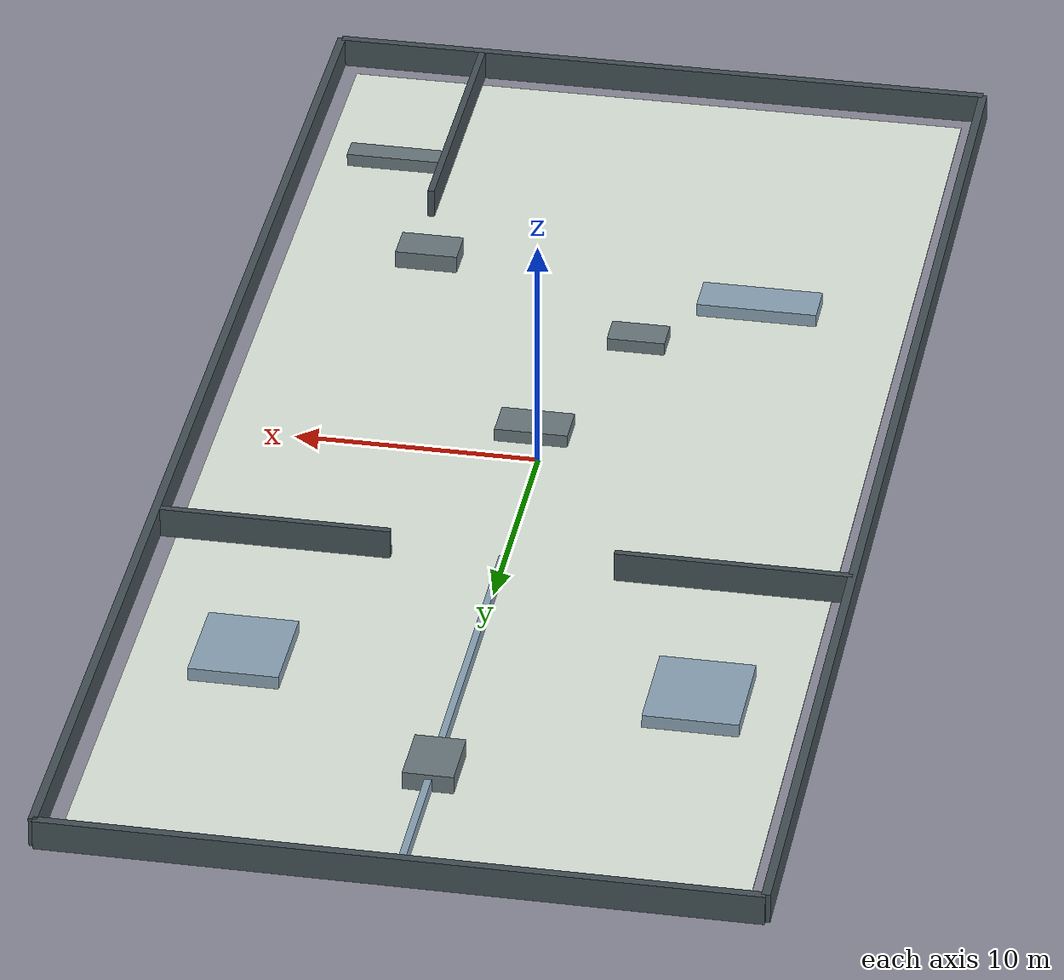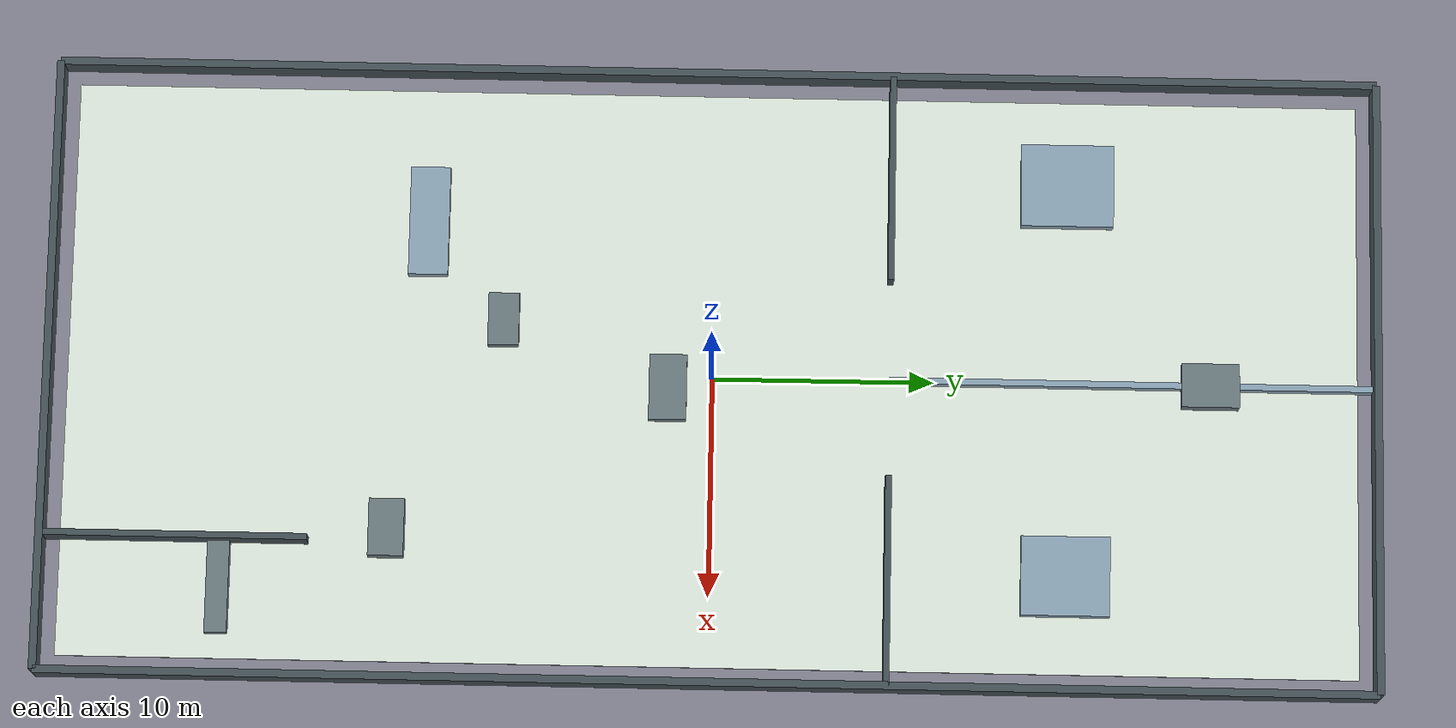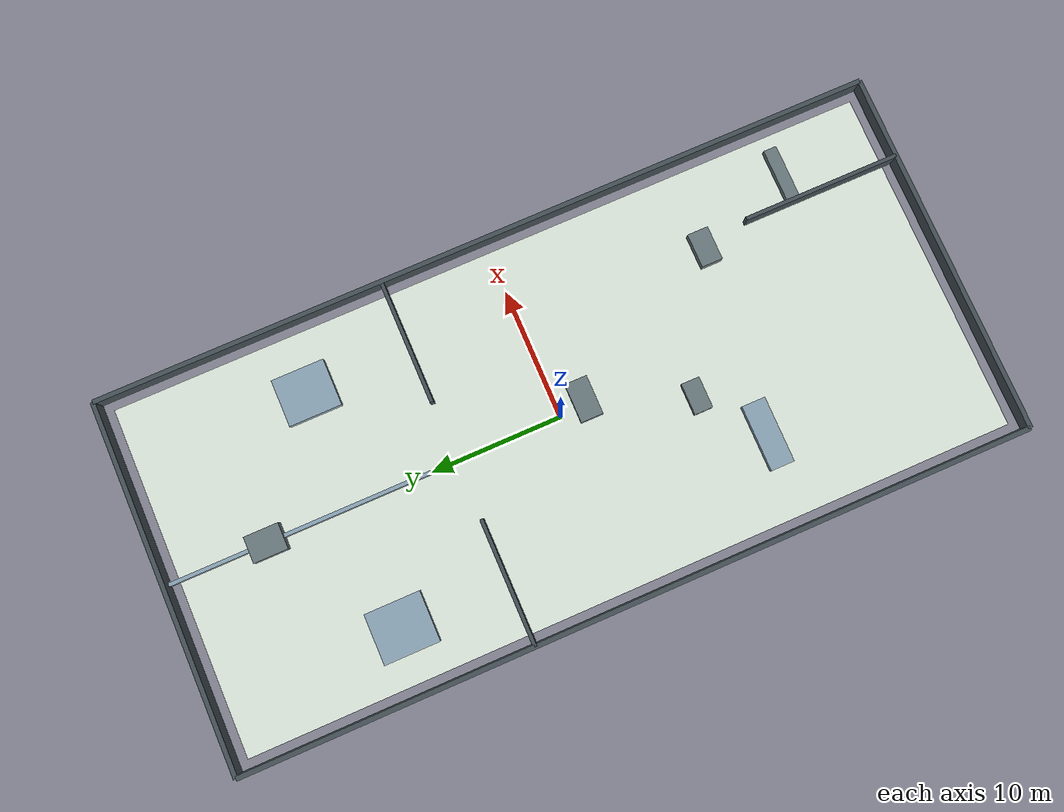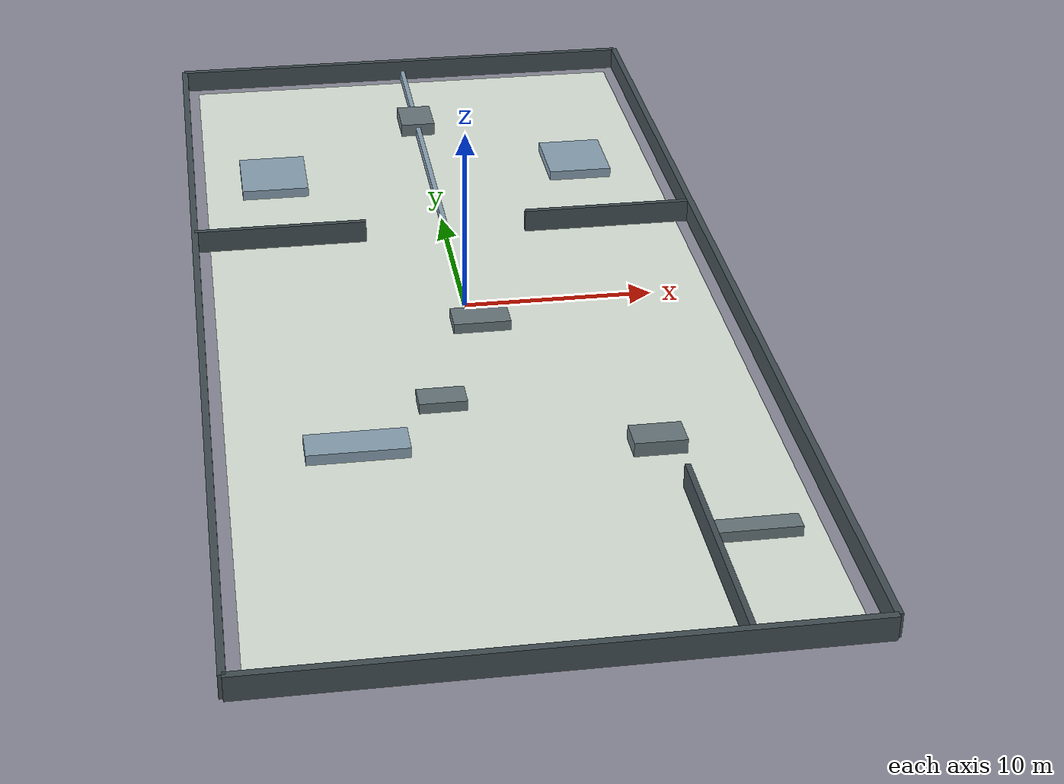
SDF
<?xml version="1.0" ?>
<sdf version="1.6">
  <world name="open_plan_house">
    <gravity>0 0 -9.8</gravity>
    <scene>
      <ambient>0.65 0.65 0.65 1</ambient>
      <background>0.78 0.84 0.88 1</background>
    </scene>
    <include>
      <uri>model://sun</uri>
    </include>
    <model name="open_plan_house_floor">
      <static>true</static>
      <pose>0.000 0.000 -0.025 0 0 0</pose>
      <link name="floor_link">
        <collision name="floor_collision">
          <geometry>
            <box><size>26.400 58.400 0.050</size></box>
          </geometry>
        </collision>
        <visual name="floor_visual">
          <geometry>
            <box><size>26.400 58.400 0.050</size></box>
          </geometry>
          <material><ambient>0.88 0.92 0.88 1</ambient><diffuse>0.88 0.92 0.88 1</diffuse></material>
        </visual>
      </link>
    </model>
    <model name="outer_north">
      <static>true</static>
      <pose>0.000 30.000 0.625 0 0 0</pose>
      <link name="outer_north_link">
        <collision name="outer_north_collision">
          <geometry>
            <box><size>28.000 0.350 1.250</size></box>
          </geometry>
        </collision>
        <visual name="outer_north_visual">
          <geometry>
            <box><size>28.000 0.350 1.250</size></box>
          </geometry>
          <material><ambient>0.27 0.32 0.34 1</ambient><diffuse>0.27 0.32 0.34 1</diffuse></material>
        </visual>
      </link>
    </model>
    <model name="outer_south">
      <static>true</static>
      <pose>0.000 -30.000 0.625 0 0 0</pose>
      <link name="outer_south_link">
        <collision name="outer_south_collision">
          <geometry>
            <box><size>28.000 0.350 1.250</size></box>
          </geometry>
        </collision>
        <visual name="outer_south_visual">
          <geometry>
            <box><size>28.000 0.350 1.250</size></box>
          </geometry>
          <material><ambient>0.27 0.32 0.34 1</ambient><diffuse>0.27 0.32 0.34 1</diffuse></material>
        </visual>
      </link>
    </model>
    <model name="outer_west">
      <static>true</static>
      <pose>-14.000 0.000 0.625 0 0 0</pose>
      <link name="outer_west_link">
        <collision name="outer_west_collision">
          <geometry>
            <box><size>0.350 60.000 1.250</size></box>
          </geometry>
        </collision>
        <visual name="outer_west_visual">
          <geometry>
            <box><size>0.350 60.000 1.250</size></box>
          </geometry>
          <material><ambient>0.27 0.32 0.34 1</ambient><diffuse>0.27 0.32 0.34 1</diffuse></material>
        </visual>
      </link>
    </model>
    <model name="outer_east">
      <static>true</static>
      <pose>14.000 0.000 0.625 0 0 0</pose>
      <link name="outer_east_link">
        <collision name="outer_east_collision">
          <geometry>
            <box><size>0.350 60.000 1.250</size></box>
          </geometry>
        </collision>
        <visual name="outer_east_visual">
          <geometry>
            <box><size>0.350 60.000 1.250</size></box>
          </geometry>
          <material><ambient>0.27 0.32 0.34 1</ambient><diffuse>0.27 0.32 0.34 1</diffuse></material>
        </visual>
      </link>
    </model>
    <model name="open_private_wall_w">
      <static>true</static>
      <pose>-9.250 8.000 0.625 0 0 0</pose>
      <link name="open_private_wall_w_link">
        <collision name="open_private_wall_w_collision">
          <geometry>
            <box><size>9.500 0.280 1.250</size></box>
          </geometry>
        </collision>
        <visual name="open_private_wall_w_visual">
          <geometry>
            <box><size>9.500 0.280 1.250</size></box>
          </geometry>
          <material><ambient>0.27 0.32 0.34 1</ambient><diffuse>0.27 0.32 0.34 1</diffuse></material>
        </visual>
      </link>
    </model>
    <model name="open_private_wall_e">
      <static>true</static>
      <pose>9.250 8.000 0.625 0 0 0</pose>
      <link name="open_private_wall_e_link">
        <collision name="open_private_wall_e_collision">
          <geometry>
            <box><size>9.500 0.280 1.250</size></box>
          </geometry>
        </collision>
        <visual name="open_private_wall_e_visual">
          <geometry>
            <box><size>9.500 0.280 1.250</size></box>
          </geometry>
          <material><ambient>0.27 0.32 0.34 1</ambient><diffuse>0.27 0.32 0.34 1</diffuse></material>
        </visual>
      </link>
    </model>
    <model name="open_bedroom_split">
      <static>true</static>
      <pose>0.000 19.000 0.275 0 0 0</pose>
      <link name="open_bedroom_split_link">
        <collision name="open_bedroom_split_collision">
          <geometry>
            <box><size>0.280 22.000 0.550</size></box>
          </geometry>
        </collision>
        <visual name="open_bedroom_split_visual">
          <geometry>
            <box><size>0.280 22.000 0.550</size></box>
          </geometry>
          <material><ambient>0.55 0.65 0.72 1</ambient><diffuse>0.55 0.65 0.72 1</diffuse></material>
        </visual>
      </link>
    </model>
    <model name="open_kitchen_hint_wall">
      <static>true</static>
      <pose>7.800 -24.000 0.625 0 0 0</pose>
      <link name="open_kitchen_hint_wall_link">
        <collision name="open_kitchen_hint_wall_collision">
          <geometry>
            <box><size>0.280 12.000 1.250</size></box>
          </geometry>
        </collision>
        <visual name="open_kitchen_hint_wall_visual">
          <geometry>
            <box><size>0.280 12.000 1.250</size></box>
          </geometry>
          <material><ambient>0.27 0.32 0.34 1</ambient><diffuse>0.27 0.32 0.34 1</diffuse></material>
        </visual>
      </link>
    </model>
    <model name="open_sofa">
      <static>true</static>
      <pose>-7.000 -13.000 0.275 0 0 0</pose>
      <link name="open_sofa_link">
        <collision name="open_sofa_collision">
          <geometry>
            <box><size>5.000 1.800 0.550</size></box>
          </geometry>
        </collision>
        <visual name="open_sofa_visual">
          <geometry>
            <box><size>5.000 1.800 0.550</size></box>
          </geometry>
          <material><ambient>0.55 0.65 0.72 1</ambient><diffuse>0.55 0.65 0.72 1</diffuse></material>
        </visual>
      </link>
    </model>
    <model name="open_coffee_table">
      <static>true</static>
      <pose>-2.500 -9.500 0.275 0 0 0</pose>
      <link name="open_coffee_table_link">
        <collision name="open_coffee_table_collision">
          <geometry>
            <box><size>2.400 1.400 0.550</size></box>
          </geometry>
        </collision>
        <visual name="open_coffee_table_visual">
          <geometry>
            <box><size>2.400 1.400 0.550</size></box>
          </geometry>
          <material><ambient>0.42 0.48 0.50 1</ambient><diffuse>0.42 0.48 0.50 1</diffuse></material>
        </visual>
      </link>
    </model>
    <model name="open_dining_table">
      <static>true</static>
      <pose>0.500 -2.000 0.275 0 0 0</pose>
      <link name="open_dining_table_link">
        <collision name="open_dining_table_collision">
          <geometry>
            <box><size>3.000 1.700 0.550</size></box>
          </geometry>
        </collision>
        <visual name="open_dining_table_visual">
          <geometry>
            <box><size>3.000 1.700 0.550</size></box>
          </geometry>
          <material><ambient>0.42 0.48 0.50 1</ambient><diffuse>0.42 0.48 0.50 1</diffuse></material>
        </visual>
      </link>
    </model>
    <model name="open_kitchen_counter">
      <static>true</static>
      <pose>10.000 -22.000 0.275 0 0 0</pose>
      <link name="open_kitchen_counter_link">
        <collision name="open_kitchen_counter_collision">
          <geometry>
            <box><size>4.200 1.000 0.550</size></box>
          </geometry>
        </collision>
        <visual name="open_kitchen_counter_visual">
          <geometry>
            <box><size>4.200 1.000 0.550</size></box>
          </geometry>
          <material><ambient>0.42 0.48 0.50 1</ambient><diffuse>0.42 0.48 0.50 1</diffuse></material>
        </visual>
      </link>
    </model>
    <model name="open_kitchen_island">
      <static>true</static>
      <pose>7.200 -14.500 0.375 0 0 0</pose>
      <link name="open_kitchen_island_link">
        <collision name="open_kitchen_island_collision">
          <geometry>
            <box><size>2.600 1.600 0.750</size></box>
          </geometry>
        </collision>
        <visual name="open_kitchen_island_visual">
          <geometry>
            <box><size>2.600 1.600 0.750</size></box>
          </geometry>
          <material><ambient>0.42 0.48 0.50 1</ambient><diffuse>0.42 0.48 0.50 1</diffuse></material>
        </visual>
      </link>
    </model>
    <model name="open_bed_left">
      <static>true</static>
      <pose>-9.200 16.000 0.275 0 0 0</pose>
      <link name="open_bed_left_link">
        <collision name="open_bed_left_collision">
          <geometry>
            <box><size>3.800 4.200 0.550</size></box>
          </geometry>
        </collision>
        <visual name="open_bed_left_visual">
          <geometry>
            <box><size>3.800 4.200 0.550</size></box>
          </geometry>
          <material><ambient>0.55 0.65 0.72 1</ambient><diffuse>0.55 0.65 0.72 1</diffuse></material>
        </visual>
      </link>
    </model>
    <model name="open_bed_right">
      <static>true</static>
      <pose>8.800 16.000 0.275 0 0 0</pose>
      <link name="open_bed_right_link">
        <collision name="open_bed_right_collision">
          <geometry>
            <box><size>3.600 4.000 0.550</size></box>
          </geometry>
        </collision>
        <visual name="open_bed_right_visual">
          <geometry>
            <box><size>3.600 4.000 0.550</size></box>
          </geometry>
          <material><ambient>0.55 0.65 0.72 1</ambient><diffuse>0.55 0.65 0.72 1</diffuse></material>
        </visual>
      </link>
    </model>
    <model name="open_bath_fixture">
      <static>true</static>
      <pose>0.000 22.500 0.375 0 0 0</pose>
      <link name="open_bath_fixture_link">
        <collision name="open_bath_fixture_collision">
          <geometry>
            <box><size>2.000 2.600 0.750</size></box>
          </geometry>
        </collision>
        <visual name="open_bath_fixture_visual">
          <geometry>
            <box><size>2.000 2.600 0.750</size></box>
          </geometry>
          <material><ambient>0.42 0.48 0.50 1</ambient><diffuse>0.42 0.48 0.50 1</diffuse></material>
        </visual>
      </link>
    </model>
  </world>
</sdf>
